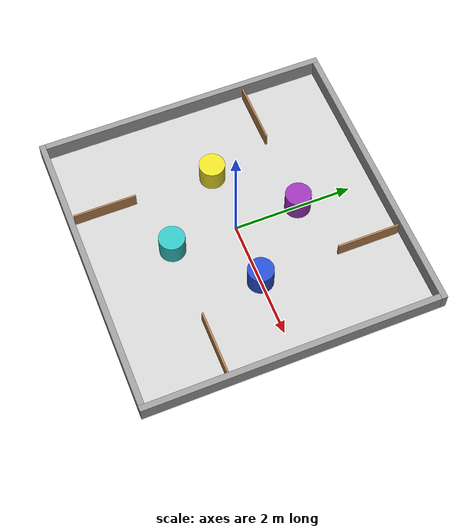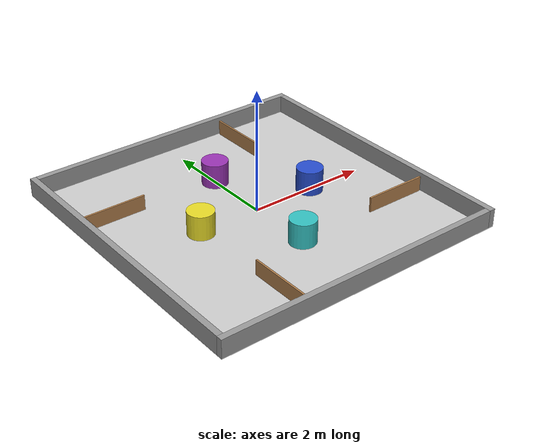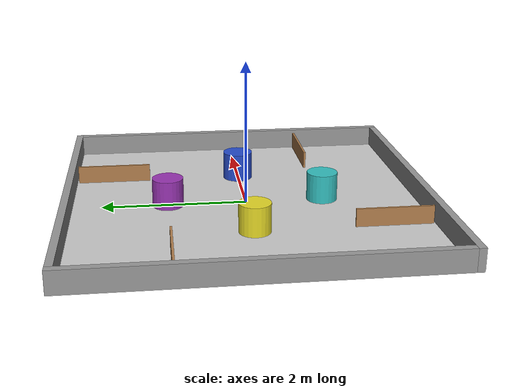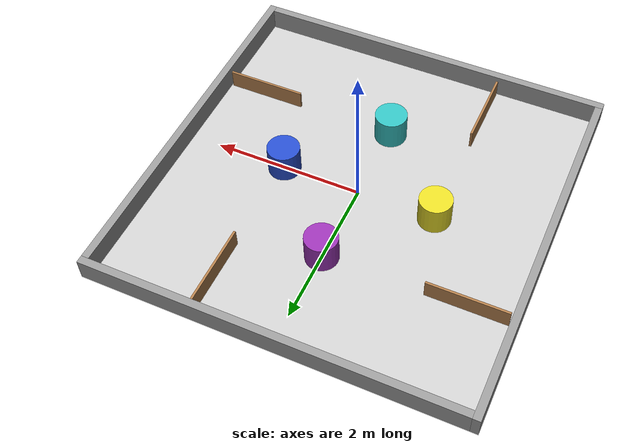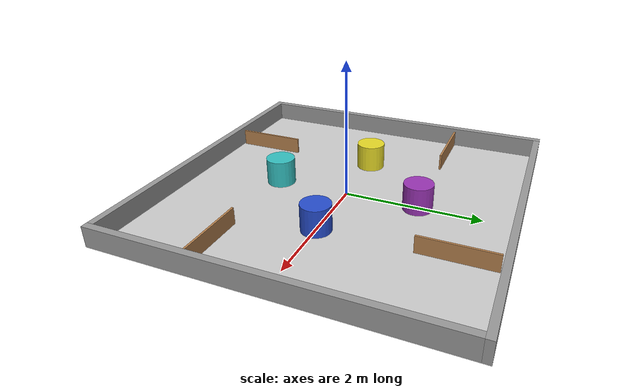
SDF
<sdf version="1.6">
 <world name="default">
  <light name="sun" type="directional">
   <pose>0 0 10 0 -0 0</pose>
   <diffuse>0.8 0.8 0.8 1</diffuse>
   <specular>0.2 0.2 0.2 1</specular>
   <attenuation>
    <range>1000</range>
    <constant>0.9</constant>
    <linear>0.01</linear>
    <quadratic>0.001</quadratic>
   </attenuation>
   <direction>-0.5 0.1 -0.9</direction>
  </light>
  <gravity>0 0 -9.8</gravity>
  <magnetic_field>6e-06 2.3e-05 -4.2e-05</magnetic_field>
  <atmosphere type="adiabatic"/>
  <physics name="default_physics" default="0" type="ode">
   <max_step_size>0.001</max_step_size>
   <real_time_factor>1</real_time_factor>
   <real_time_update_rate>1000</real_time_update_rate>
  </physics>
  <scene><ambient>0.4 0.4 0.4 1</ambient><background>0.7 0.7 0.7 1</background><shadows>1</shadows></scene>
  <spherical_coordinates>
   <surface_model>EARTH_WGS84</surface_model>
   <latitude_deg>0</latitude_deg>
   <longitude_deg>0</longitude_deg>
   <elevation>0</elevation>
   <heading_deg>0</heading_deg>
  </spherical_coordinates>
  <include><uri>model://obstacle_avoidance</uri></include>
  <include><uri>model://arena_walls</uri></include>
 </world>
</sdf>

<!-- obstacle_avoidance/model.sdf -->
<sdf version="1.4">
<model name="obstacle_avoidance">
  <static>true</static>
    <link name="floor">
      <collision name="collision">
        <geometry>
          <plane>
            <normal>0 0 1</normal>
            <size>5.0 5.0</size>
          </plane>
        </geometry>
        <surface>
          <friction>
            <ode>
              <mu>100</mu>
              <mu2>50</mu2>
            </ode>
          </friction>
        </surface>
      </collision>
      <visual name="visual">
        <cast_shadows>false</cast_shadows>
        <geometry>
          <plane>
            <normal>0 0 1</normal>
            <size>5.0 5.0</size>
          </plane>
        </geometry>
        <material>
          <script>
            <uri>model://obstacle_avoidance/materials/scripts</uri>
            <uri>model://obstacle_avoidance/materials/textures</uri>
            <name>ObstacleAvoidanceFloor/Image</name>
          </script>
        </material>
      </visual>
    </link>
    <link name='YEL'>
      <pose frame=''>-1.04 0 0.2 0 0 0</pose>
      <collision name='coll'>
        <geometry>
          <cylinder>
            <radius>0.215</radius>
            <length>0.4</length>
          </cylinder>
        </geometry>
        <max_contacts>10</max_contacts>
        <surface>
          <bounce/>
          <friction>
            <ode/>
          </friction>
          <contact>
            <ode/>
          </contact>
        </surface>
      </collision>
      <visual name='vis'>
        <geometry>
          <cylinder>
            <radius>0.215</radius>
            <length>0.4</length>
          </cylinder>
        </geometry>
        <material>
          <script>
            <uri>file://media/materials/scripts/gazebo.material</uri>
            <name>Gazebo/Yellow</name>
          </script>
        </material>
      </visual>
    </link>
    <link name='PRP'>
      <pose frame=''>0 1.08321 0.2 0 0 0</pose>
      <collision name='coll'>
        <geometry>
          <cylinder>
            <radius>0.215</radius>
            <length>0.4</length>
          </cylinder>
        </geometry>
        <max_contacts>10</max_contacts>
        <surface>
          <bounce/>
          <friction>
            <ode/>
          </friction>
          <contact>
            <ode/>
          </contact>
        </surface>
      </collision>
      <visual name='vis'>
        <geometry>
          <cylinder>
            <radius>0.215</radius>
            <length>0.4</length>
          </cylinder>
        </geometry>
        <material>
          <script>
            <uri>file://media/materials/scripts/gazebo.material</uri>
            <name>Gazebo/Purple</name>
          </script>
        </material>
      </visual>
    </link>
    <link name='TRQ'>
      <pose frame=''>0 -1.08320 0.2 0 0 0</pose>
      <collision name='coll'>
        <geometry>
          <cylinder>
            <radius>0.215</radius>
            <length>0.4</length>
          </cylinder>
        </geometry>
        <max_contacts>10</max_contacts>
        <surface>
          <bounce/>
          <friction>
            <ode/>
          </friction>
          <contact>
            <ode/>
          </contact>
        </surface>
      </collision>
      <visual name='vis'>
        <geometry>
          <cylinder>
            <radius>0.215</radius>
            <length>0.4</length>
          </cylinder>
        </geometry>
        <material>
          <script>
            <uri>file://media/materials/scripts/gazebo.material</uri>
            <name>Gazebo/Turquoise</name>
          </script>
        </material>
      </visual>
    </link>
    <link name='BLU'>
      <pose frame=''>1.04 0 0.2 0 0 0</pose>
      <collision name='coll'>
        <geometry>
          <cylinder>
            <radius>0.215</radius>
            <length>0.4</length>
          </cylinder>
        </geometry>
        <max_contacts>10</max_contacts>
        <surface>
          <bounce/>
          <friction>
            <ode/>
          </friction>
          <contact>
            <ode/>
          </contact>
        </surface>
      </collision>
      <visual name='vis'>
        <geometry>
          <cylinder>
            <radius>0.215</radius>
            <length>0.4</length>
          </cylinder>
        </geometry>
        <material>
          <script>
            <uri>file://media/materials/scripts/gazebo.material</uri>
            <name>Gazebo/Blue</name>
          </script>
        </material>
      </visual>
    </link>
    <link name='wall_1'>
      <pose frame=''>-1.04 -1.85208 0.125 0 0 0</pose>
      <collision name='coll'>
        <geometry>
          <box>
            <size>0.03 1.05 0.25</size>
          </box>
        </geometry>
      </collision>
      <visual name='vis'>
        <geometry>
          <box>
            <size>0.03 1.05 0.25</size>
          </box>
        </geometry>
        <material>
          <script>
            <uri>file://media/materials/scripts/gazebo.material</uri>
            <name>Gazebo/Wood</name>
          </script>
        </material>
      </visual>
    </link>
    <link name='wall_2'>
      <pose frame=''>-1.85208 1.08321 0.125 0 0 0</pose>
      <collision name='coll'>
        <geometry>
          <box>
            <size>1.05 0.03 0.25</size>
          </box>
        </geometry>
      </collision>
      <visual name='vis'>
        <geometry>
          <box>
            <size>1.05 0.03 0.25</size>
          </box>
        </geometry>
        <material>
          <script>
            <uri>file://media/materials/scripts/gazebo.material</uri>
            <name>Gazebo/Wood</name>
          </script>
        </material>
      </visual>
    </link>
    <link name='wall_3'>
      <pose frame=''>1.04 1.85208 0.125 0 0 0</pose>
      <collision name='coll'>
        <geometry>
          <box>
            <size>0.03 1.05 0.25</size>
          </box>
        </geometry>
      </collision>
      <visual name='vis'>
        <geometry>
          <box>
            <size>0.03 1.05 0.25</size>
          </box>
        </geometry>
        <material>
          <script>
            <uri>file://media/materials/scripts/gazebo.material</uri>
            <name>Gazebo/Wood</name>
          </script>
        </material>
      </visual>
    </link>
    <link name='wall_4'>
      <pose frame=''>1.85208 -1.08320 0.125 0 0 0</pose>
      <collision name='coll'>
        <geometry>
          <box>
            <size>1.05 0.03 0.25</size>
          </box>
        </geometry>
      </collision>
      <visual name='vis'>
        <geometry>
          <box>
            <size>1.05 0.03 0.25</size>
          </box>
        </geometry>
        <material>
          <script>
            <uri>file://media/materials/scripts/gazebo.material</uri>
            <name>Gazebo/Wood</name>
          </script>
        </material>
      </visual>
    </link>
  </model>
</sdf>

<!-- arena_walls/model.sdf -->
<sdf version='1.6'>
  <model name='arena_walls'>
    <pose frame=''>0 0 0.15 0 0 0</pose>
    <link name='Right_Wall'>
      <collision name='Right_Wall_Collision'>
        <geometry>
          <box>
            <size>4.90 0.10 0.3</size>
          </box>
        </geometry>
        <pose frame=''>0 0 0 0 0 0</pose>
      </collision>
      <visual name='Right_Wall_Visual'>
        <pose frame=''>0 0 0 0 0 0</pose>
        <geometry>
          <box>
            <size>4.90 0.10 0.3</size>
          </box>
        </geometry>
        <material>
          <script>
            <uri>file://media/materials/scripts/gazebo.material</uri>
            <name>Gazebo/Grey</name>
          </script>
          <ambient>1 1 1 1</ambient>
        </material>
      </visual>
      <pose frame=''>0.05 2.45 0 0 0 0</pose>
    </link>
    <link name='Back_Wall'>
      <collision name='Back_Wall_Collision'>
        <geometry>
          <box>
            <size>4.90 0.10 0.3</size>
          </box>
        </geometry>
        <pose frame=''>0 0 0 0 0 0</pose>
      </collision>
      <visual name='Back_Wall_Visual'>
        <pose frame=''>0 0 0 0 0 0</pose>
        <geometry>
          <box>
            <size>4.90 0.10 0.3</size>
          </box>
        </geometry>
        <material>
          <script>
            <uri>file://media/materials/scripts/gazebo.material</uri>
            <name>Gazebo/Grey</name>
          </script>
          <ambient>1 1 1 1</ambient>
        </material>
      </visual>
      <pose frame=''>-2.45 0.05 0 0 0 1.5708</pose>
    </link>
    <link name='Left_Wall'>
      <collision name='Left_Wall_Collision'>
        <geometry>
          <box>
            <size>4.90 0.10 0.3</size>
          </box>
        </geometry>
        <pose frame=''>0 0 0 0 0 0</pose>
      </collision>
      <visual name='Left_Wall_Visual'>
        <pose frame=''>0 0 0 0 0 0</pose>
        <geometry>
          <box>
            <size>4.90 0.10 0.3</size>
          </box>
        </geometry>
        <material>
          <script>
            <uri>file://media/materials/scripts/gazebo.material</uri>
            <name>Gazebo/Grey</name>
          </script>
          <ambient>1 1 1 1</ambient>
        </material>
      </visual>
      <pose frame=''>-0.05 -2.45 0 0 0 0</pose>
    </link>
    <link name='Front_Wall'>
      <collision name='Front_Wall_Collision'>
        <geometry>
          <box>
            <size>4.90 0.10 0.3</size>
          </box>
        </geometry>
        <pose frame=''>0 0 0 0 0 0</pose>
      </collision>
      <visual name='Front_Wall_Visual'>
        <pose frame=''>0 0 0 0 0 0</pose>
        <geometry>
          <box>
            <size>4.90 0.10 0.3</size>
          </box>
        </geometry>
        <material>
          <script>
            <uri>file://media/materials/scripts/gazebo.material</uri>
            <name>Gazebo/Grey</name>
          </script>
          <ambient>1 1 1 1</ambient>
        </material>
      </visual>
      <pose frame=''>2.45 -0.05 0 0 0 1.5708</pose>
    </link>
    <static>1</static>
  </model>
</sdf>
